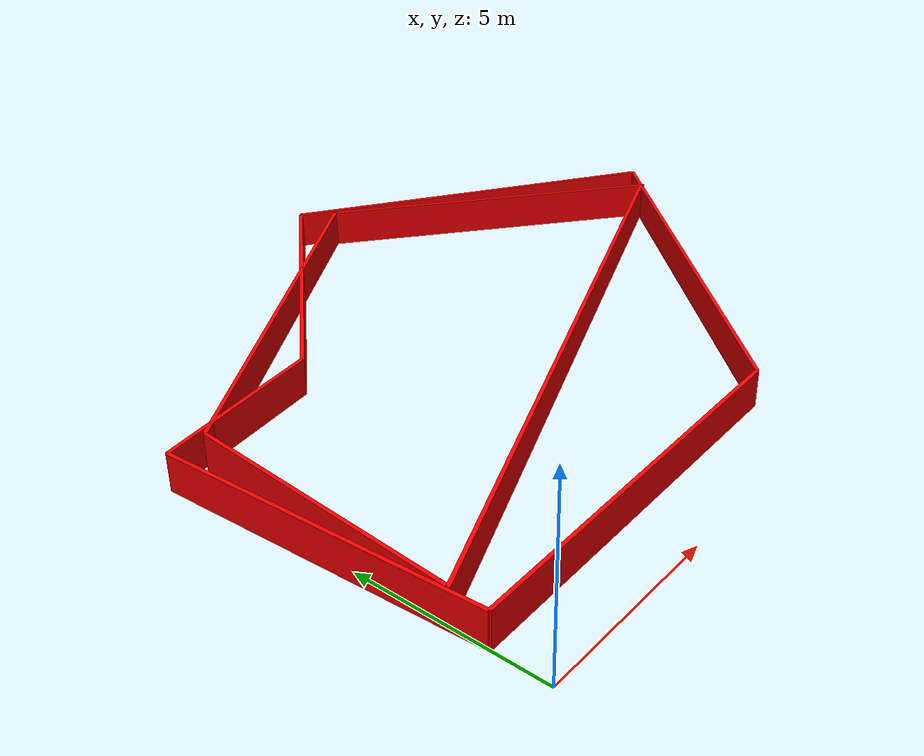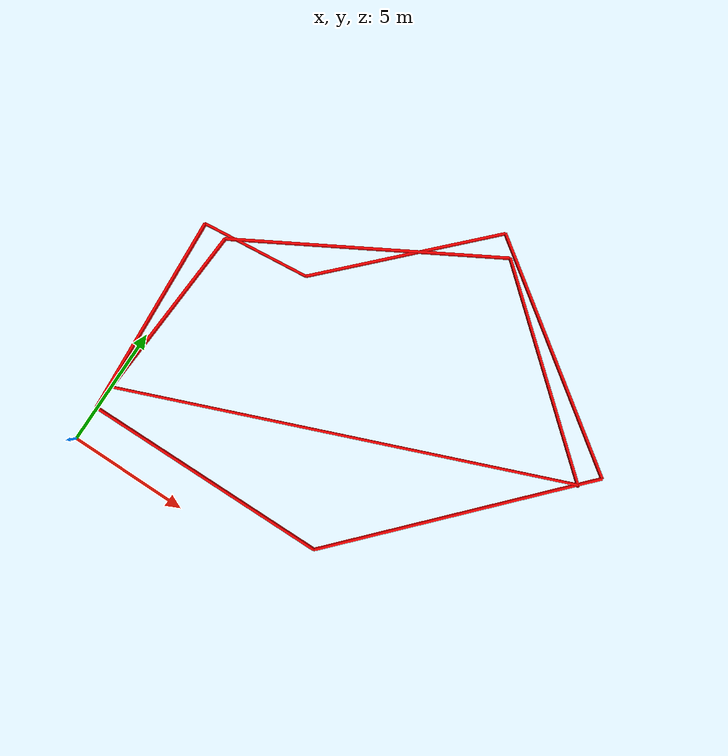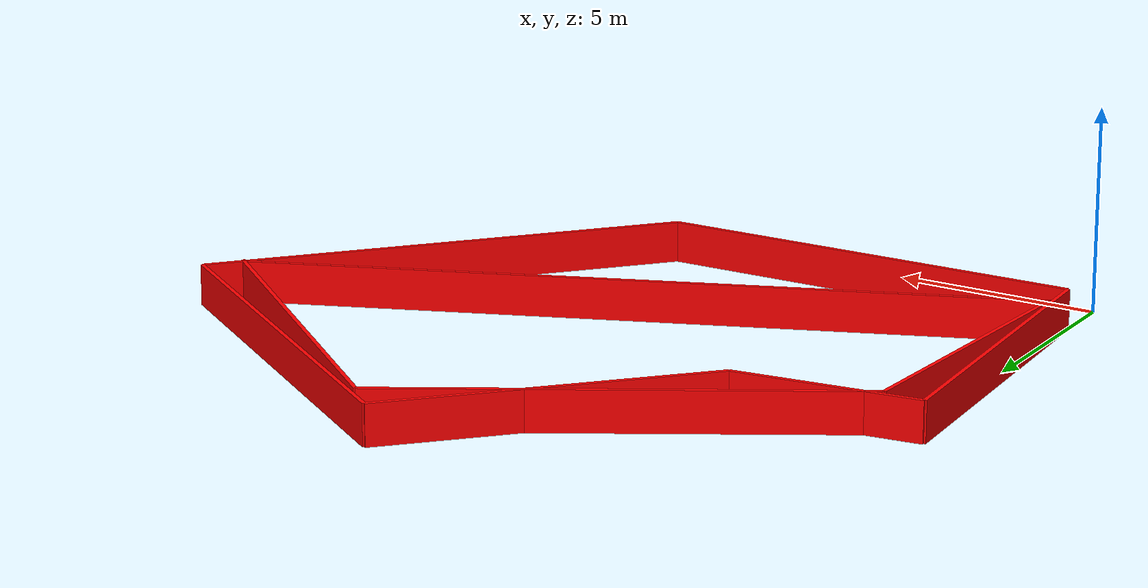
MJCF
<mujoco>
<worldbody>
<body pos='0.015576323987538958 2.499221183800623 0.5' euler='0 0 177.13759477388837'><geom type='box' size='0.015595782238707761 0.05 0.5' rgba='1 0 0 1'/></body><body pos='-0.25 5.75 0.5' euler='0 0 -86.63353933657021'><geom type='box' size='4.257346591481601 0.05 0.5' rgba='1 0 0 1'/></body><body pos='8.814101720446478 6.079837531057473 0.5' euler='0 0 22.10447509898556'><geom type='box' size='9.513339365708827 0.05 0.5' rgba='1 0 0 1'/></body><body pos='5.1767766952966365 1.573223304703363 0.5' euler='0 0 0.8103703932197163'><geom type='box' size='5.177294525649284 0.05 0.5' rgba='1 0 0 1'/></body><body pos='17.664101720446478 9.629837531057472 0.5' euler='0 0 -39.73230287195676'><geom type='box' size='0.04667938232783761 0.05 0.5' rgba='1 0 0 1'/></body><body pos='14.326776695296637 6.023223304703364 0.5' euler='0 0 47.76693758497272'><geom type='box' size='5.911233176717838 0.05 0.5' rgba='1 0 0 1'/></body><body pos='14.026776695296636 12.623223304703362 0.5' euler='0 0 140.54412683822278'><geom type='box' size='4.757357312239372 0.05 0.5' rgba='1 0 0 1'/></body><body pos='13.973223304703364 13.376776695296638 0.5' euler='0 0 145.47243882886443'><geom type='box' size='5.251875480685281 0.05 0.5' rgba='1 0 0 1'/></body><body pos='5.424838710800513 12.792215552765379 0.5' euler='0 0 -149.9247600024038'><geom type='box' size='5.695512559858035 0.05 0.5' rgba='1 0 0 1'/></body><body pos='6.8232233047033635 13.426776695296637 0.5' euler='0 0 -133.9682554928362'><geom type='box' size='4.066523288062135 0.05 0.5' rgba='1 0 0 1'/></body><body pos='0.2636383394914149 6.2182134318626385 0.5' euler='0 0 -93.57633437499736'><geom type='box' size='3.7270291610445123 0.05 0.5' rgba='1 0 0 1'/></body><body pos='1.75 10.25 0.5' euler='0 0 -173.6598082540901'><geom type='box' size='2.2638462845343543 0.05 0.5' rgba='1 0 0 1'/></body>
</worldbody>
</mujoco>
